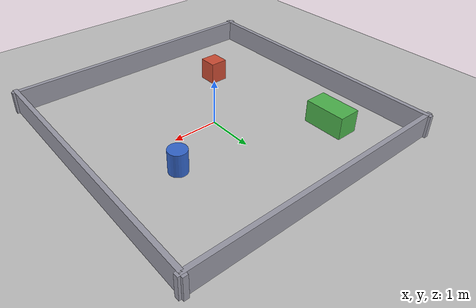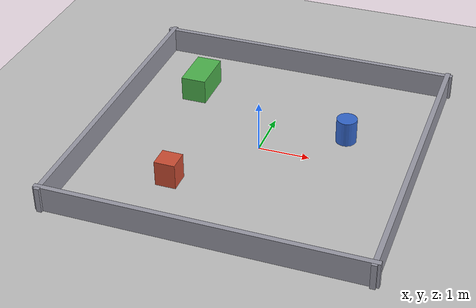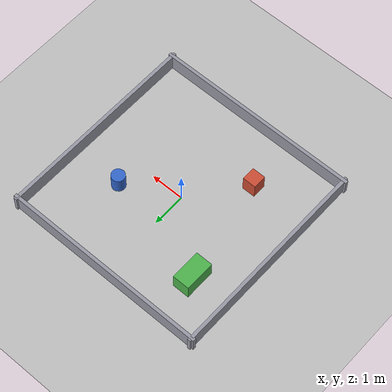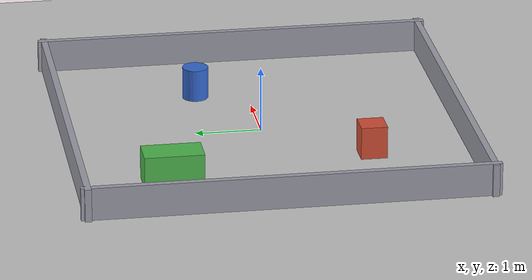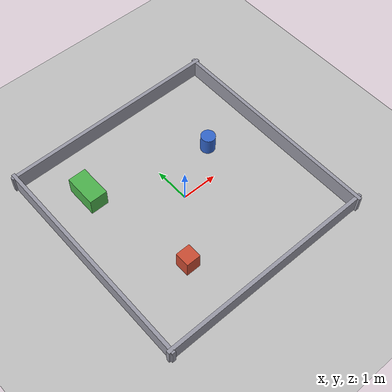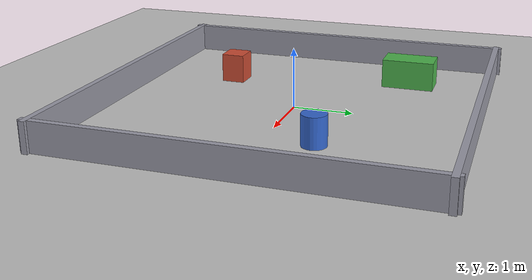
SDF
<?xml version="1.0" ?>
<sdf version="1.6">
  <world name="default">

    <physics type="ode">
      <max_step_size>0.001</max_step_size>
      <real_time_update_rate>1000</real_time_update_rate>
    </physics>

    <scene>
      <ambient>0.5 0.5 0.5 1</ambient>
      <background>0.7 0.8 0.9 1</background>
      <shadows>false</shadows>
    </scene>

    <light type="directional" name="sun">
      <cast_shadows>false</cast_shadows>
      <pose>0 0 10 0 0 0</pose>
      <diffuse>0.9 0.9 0.9 1</diffuse>
      <specular>0.2 0.2 0.2 1</specular>
      <direction>-0.5 0.2 -0.9</direction>
    </light>

    <model name="ground_plane">
      <static>true</static>
      <link name="link">
        <collision name="collision">
          <geometry><plane><normal>0 0 1</normal><size>100 100</size></plane></geometry>
          <surface>
            <friction><ode><mu>1.0</mu><mu2>1.0</mu2></ode></friction>
          </surface>
        </collision>
        <visual name="visual">
          <geometry><plane><normal>0 0 1</normal><size>100 100</size></plane></geometry>
          <material>
            <ambient>0.7 0.7 0.7 1</ambient>
            <diffuse>0.75 0.75 0.75 1</diffuse>
          </material>
        </visual>
      </link>
    </model>

    <!-- A 6 x 6 m room. Walls are 0.5 m tall so the lidar at z=0.115 sees them. -->
    <model name="wall_north">
      <static>true</static><pose>0 3 0.25 0 0 0</pose>
      <link name="link">
        <collision name="c"><geometry><box><size>6.2 0.1 0.5</size></box></geometry></collision>
        <visual name="v"><geometry><box><size>6.2 0.1 0.5</size></box></geometry>
          <material><ambient>0.6 0.6 0.65 1</ambient><diffuse>0.6 0.6 0.65 1</diffuse></material></visual>
      </link>
    </model>
    <model name="wall_south">
      <static>true</static><pose>0 -3 0.25 0 0 0</pose>
      <link name="link">
        <collision name="c"><geometry><box><size>6.2 0.1 0.5</size></box></geometry></collision>
        <visual name="v"><geometry><box><size>6.2 0.1 0.5</size></box></geometry>
          <material><ambient>0.6 0.6 0.65 1</ambient><diffuse>0.6 0.6 0.65 1</diffuse></material></visual>
      </link>
    </model>
    <model name="wall_east">
      <static>true</static><pose>3 0 0.25 0 0 0</pose>
      <link name="link">
        <collision name="c"><geometry><box><size>0.1 6.2 0.5</size></box></geometry></collision>
        <visual name="v"><geometry><box><size>0.1 6.2 0.5</size></box></geometry>
          <material><ambient>0.6 0.6 0.65 1</ambient><diffuse>0.6 0.6 0.65 1</diffuse></material></visual>
      </link>
    </model>
    <model name="wall_west">
      <static>true</static><pose>-3 0 0.25 0 0 0</pose>
      <link name="link">
        <collision name="c"><geometry><box><size>0.1 6.2 0.5</size></box></geometry></collision>
        <visual name="v"><geometry><box><size>0.1 6.2 0.5</size></box></geometry>
          <material><ambient>0.6 0.6 0.65 1</ambient><diffuse>0.6 0.6 0.65 1</diffuse></material></visual>
      </link>
    </model>

    <!-- Interior obstacles make the LiDAR output asymmetric and easy to inspect. -->
    <model name="pillar_a">
      <static>true</static><pose>1.5 0.8 0.25 0 0 0</pose>
      <link name="link">
        <collision name="c"><geometry><cylinder><radius>0.2</radius><length>0.5</length></cylinder></geometry></collision>
        <visual name="v"><geometry><cylinder><radius>0.2</radius><length>0.5</length></cylinder></geometry>
          <material><ambient>0.2 0.4 0.8 1</ambient><diffuse>0.2 0.4 0.8 1</diffuse></material></visual>
      </link>
    </model>
    <model name="pillar_b">
      <static>true</static><pose>-1.2 -1.5 0.25 0 0 0</pose>
      <link name="link">
        <collision name="c"><geometry><box><size>0.4 0.4 0.5</size></box></geometry></collision>
        <visual name="v"><geometry><box><size>0.4 0.4 0.5</size></box></geometry>
          <material><ambient>0.8 0.3 0.2 1</ambient><diffuse>0.8 0.3 0.2 1</diffuse></material></visual>
      </link>
    </model>
    <model name="pillar_c">
      <static>true</static><pose>-1.8 1.6 0.25 0 0 0</pose>
      <link name="link">
        <collision name="c"><geometry><box><size>0.5 0.9 0.5</size></box></geometry></collision>
        <visual name="v"><geometry><box><size>0.5 0.9 0.5</size></box></geometry>
          <material><ambient>0.3 0.7 0.3 1</ambient><diffuse>0.3 0.7 0.3 1</diffuse></material></visual>
      </link>
    </model>

  </world>
</sdf>
